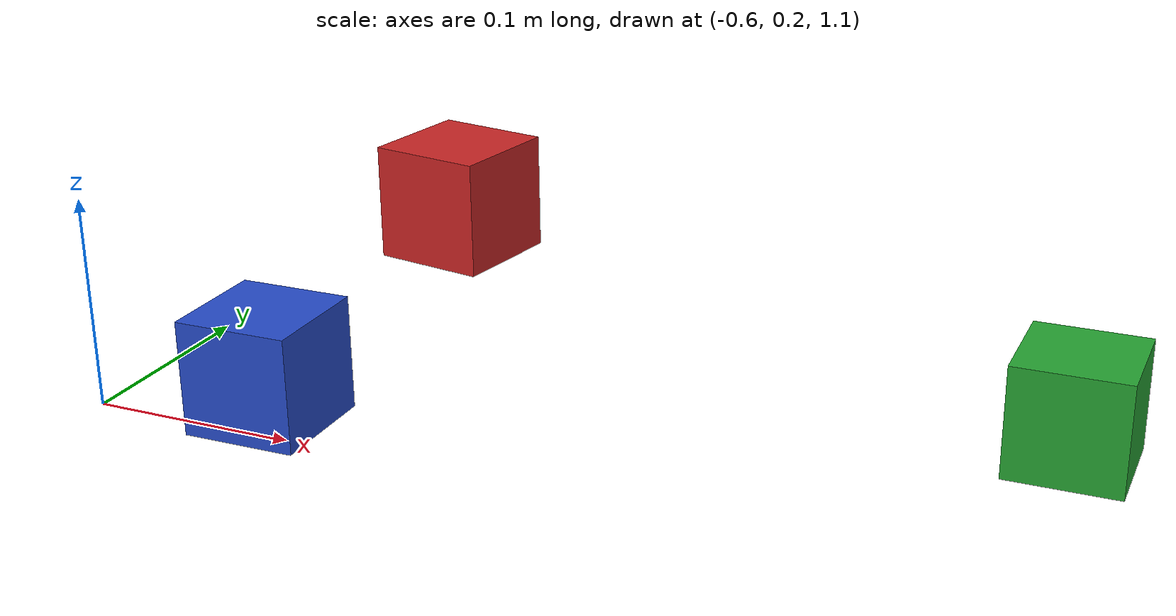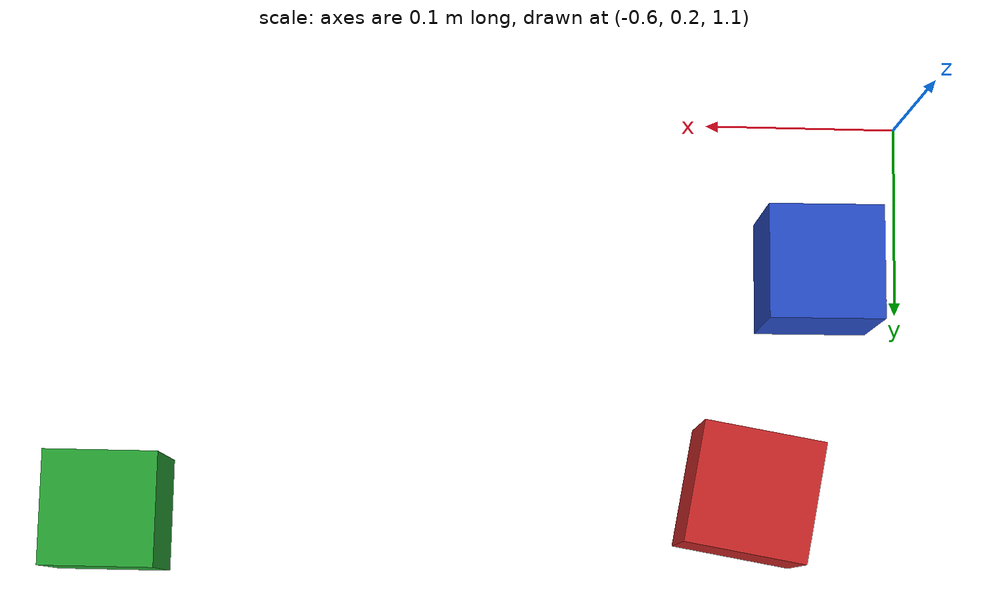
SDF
<sdf version="1.6">
 <world name="default">
  <model name="ground_plane">
   <static>1</static>
   <link name="link">
    <collision name="collision">
     <geometry><plane><normal>0 0 1</normal><size>100 100</size></plane></geometry>
     <surface>
      <contact><collide_bitmask>65535</collide_bitmask></contact>
      <friction><ode><mu>100</mu><mu2>50</mu2></ode></friction>
     </surface>
    </collision>
    <visual name="visual">
     <cast_shadows>0</cast_shadows>
     <geometry><plane><normal>0 0 1</normal><size>100 100</size></plane></geometry>
     <material>
      <script><uri>file://media/materials/scripts/gazebo.material</uri><name>Gazebo/Grey</name></script>
     </material>
    </visual>
   </link>
  </model>
  <model name="GreenBox">
   <link name="link">
    <inertial>
     <mass>0.1</mass>
     <inertia>
      <ixx>0.00193333</ixx>
      <ixy>0</ixy>
      <ixz>0</ixz>
      <iyy>0.00193333</iyy>
      <iyz>0</iyz>
      <izz>0.00193333</izz>
     </inertia>
    </inertial>
    <visual name="visual">
     <geometry><box><size>0.06 0.06 0.06</size></box></geometry>
     <material>
      <script><name>Gazebo/Green</name><uri>file://media/materials/scripts/gazebo.material</uri></script>
      <shader type="vertex"><normal_map>__default__</normal_map></shader>
      <ambient>0 0.3 0 1</ambient>
      <diffuse>0.7 0.7 0.7 1</diffuse>
      <specular>0.01 0.01 0.01 1</specular>
      <emissive>0 0 0 1</emissive>
     </material>
    </visual>
    <collision name="collision">
     <geometry><box><size>0.06 0.06 0.06</size></box></geometry>
     <surface>
      <friction>
       <ode><mu>1</mu><mu2>1</mu2><fdir1>0 0 0</fdir1><slip1>0</slip1><slip2>0</slip2></ode>
       <torsional>
        <coefficient>1</coefficient>
        <patch_radius>0</patch_radius>
        <surface_radius>0</surface_radius>
        <use_patch_radius>1</use_patch_radius>
        <ode><slip>0</slip></ode>
       </torsional>
      </friction>
      <bounce><restitution_coefficient>0</restitution_coefficient><threshold>1e+06</threshold></bounce>
      <contact>
       <collide_without_contact>0</collide_without_contact>
       <collide_without_contact_bitmask>1</collide_without_contact_bitmask>
       <collide_bitmask>1</collide_bitmask>
       <ode>
        <soft_cfm>0</soft_cfm>
        <soft_erp>0.2</soft_erp>
        <kp>1e+13</kp>
        <kd>1</kd>
        <max_vel>0.01</max_vel>
        <min_depth>0</min_depth>
       </ode>
       <bullet>
        <split_impulse>1</split_impulse>
        <split_impulse_penetration_threshold>-0.01</split_impulse_penetration_threshold>
        <soft_cfm>0</soft_cfm>
        <soft_erp>0.2</soft_erp>
        <kp>1e+13</kp>
        <kd>1</kd>
       </bullet>
      </contact>
     </surface>
    </collision>
   </link>
   <static>0</static>
   <pose>-0.186303 0.411113 1.08058 0 -0 0.001827</pose>
  </model>
  <model name="RedBox">
   <link name="link">
    <inertial>
     <mass>0.1</mass>
     <inertia>
      <ixx>0.00193333</ixx>
      <ixy>0</ixy>
      <ixz>0</ixz>
      <iyy>0.00193333</iyy>
      <iyz>0</iyz>
      <izz>0.00193333</izz>
     </inertia>
    </inertial>
    <visual name="visual">
     <geometry><box><size>0.06 0.06 0.06</size></box></geometry>
     <material>
      <script><name>Gazebo/Red</name><uri>file://media/materials/scripts/gazebo.material</uri></script>
      <shader type="vertex"><normal_map>__default__</normal_map></shader>
      <ambient>0.3 0 0 1</ambient>
      <diffuse>0.7 0.7 0.7 1</diffuse>
      <specular>0.01 0.01 0.01 1</specular>
      <emissive>0 0 0 1</emissive>
     </material>
    </visual>
    <collision name="collision">
     <geometry><box><size>0.06 0.06 0.06</size></box></geometry>
     <surface>
      <friction>
       <ode><mu>1</mu><mu2>1</mu2><fdir1>0 0 0</fdir1><slip1>0</slip1><slip2>0</slip2></ode>
       <torsional>
        <coefficient>1</coefficient>
        <patch_radius>0</patch_radius>
        <surface_radius>0</surface_radius>
        <use_patch_radius>1</use_patch_radius>
        <ode><slip>0</slip></ode>
       </torsional>
      </friction>
      <bounce><restitution_coefficient>0</restitution_coefficient><threshold>1e+06</threshold></bounce>
      <contact>
       <collide_without_contact>0</collide_without_contact>
       <collide_without_contact_bitmask>1</collide_without_contact_bitmask>
       <collide_bitmask>1</collide_bitmask>
       <ode><kp>1e+13</kp><kd>1</kd><max_vel>0.01</max_vel><min_depth>0.0001</min_depth></ode>
       <bullet>
        <split_impulse>1</split_impulse>
        <split_impulse_penetration_threshold>-0.01</split_impulse_penetration_threshold>
        <soft_cfm>0</soft_cfm>
        <soft_erp>0.2</soft_erp>
        <kp>1e+13</kp>
        <kd>1</kd>
       </bullet>
      </contact>
     </surface>
    </collision>
   </link>
   <static>0</static>
   <pose>-0.5163 0.4 1.15 0 -0 -0.1680</pose>
  </model>
  <model name="BlueBox">
   <link name="link">
    <inertial>
     <mass>0.1</mass>
     <inertia>
      <ixx>0.00193333</ixx>
      <ixy>0</ixy>
      <ixz>0</ixz>
      <iyy>0.00193333</iyy>
      <iyz>0</iyz>
      <izz>0.00193333</izz>
     </inertia>
    </inertial>
    <visual name="visual">
     <geometry><box><size>0.06 0.06 0.06</size></box></geometry>
     <material>
      <script><name>Gazebo/Blue</name><uri>file://media/materials/scripts/gazebo.material</uri></script>
      <shader type="vertex"><normal_map>__default__</normal_map></shader>
      <ambient>0 0 0.3 1</ambient>
      <diffuse>0.7 0.7 0.7 1</diffuse>
      <specular>0.01 0.01 0.01 1</specular>
      <emissive>0 0 0 1</emissive>
     </material>
    </visual>
    <collision name="collision">
     <geometry><box><size>0.06 0.06 0.06</size></box></geometry>
     <surface>
      <friction>
       <ode><mu>1</mu><mu2>1</mu2><fdir1>0 0 0</fdir1><slip1>0</slip1><slip2>0</slip2></ode>
       <torsional>
        <coefficient>1</coefficient>
        <patch_radius>0</patch_radius>
        <surface_radius>0</surface_radius>
        <use_patch_radius>1</use_patch_radius>
        <ode><slip>0</slip></ode>
       </torsional>
      </friction>
      <bounce><restitution_coefficient>0</restitution_coefficient><threshold>1e+06</threshold></bounce>
      <contact>
       <collide_without_contact>0</collide_without_contact>
       <collide_without_contact_bitmask>1</collide_without_contact_bitmask>
       <collide_bitmask>1</collide_bitmask>
       <ode>
        <soft_cfm>0</soft_cfm>
        <soft_erp>0.2</soft_erp>
        <kp>1e+13</kp>
        <kd>1</kd>
        <max_vel>0.01</max_vel>
        <min_depth>0</min_depth>
       </ode>
       <bullet>
        <split_impulse>1</split_impulse>
        <split_impulse_penetration_threshold>-0.01</split_impulse_penetration_threshold>
        <soft_cfm>0</soft_cfm>
        <soft_erp>0.2</soft_erp>
        <kp>1e+13</kp>
        <kd>1</kd>
       </bullet>
      </contact>
     </surface>
    </collision>
   </link>
   <static>0</static>
   <pose>-0.560639 0.275921 1.095 0 -0 0.009847</pose>
  </model>
 </world>
</sdf>
